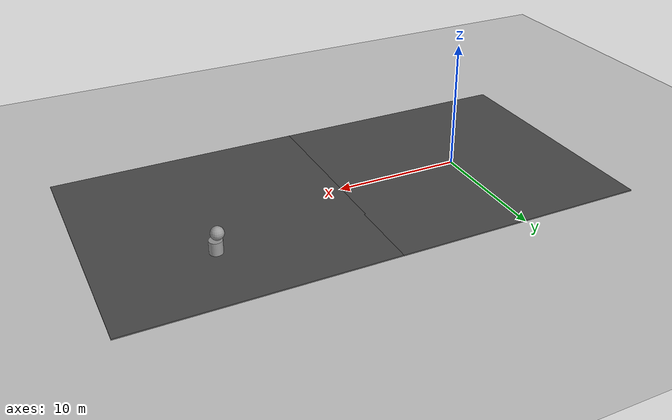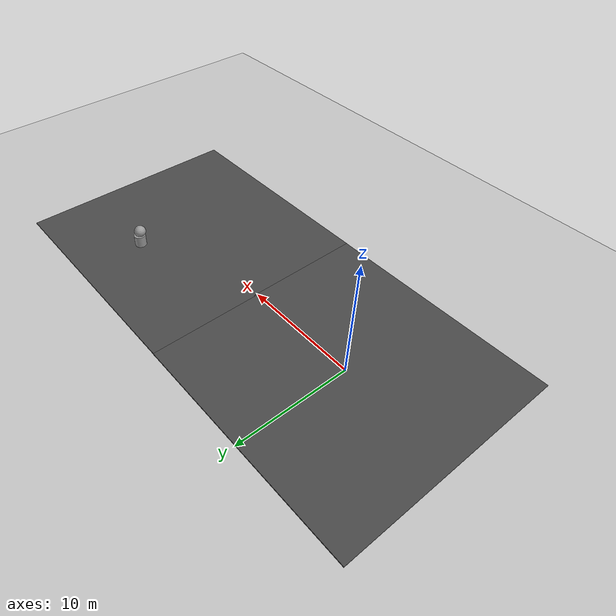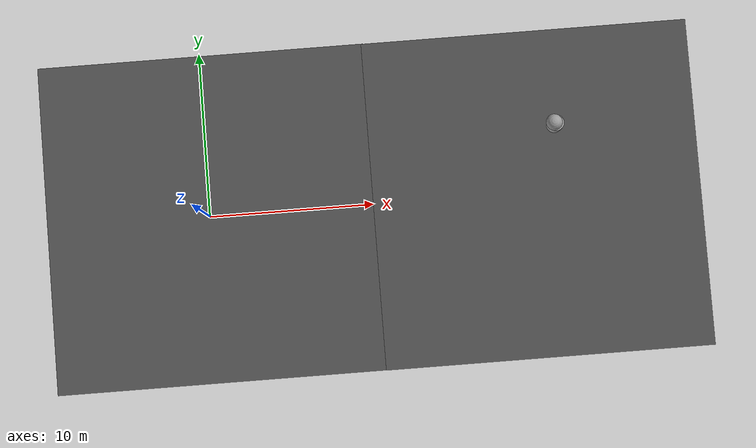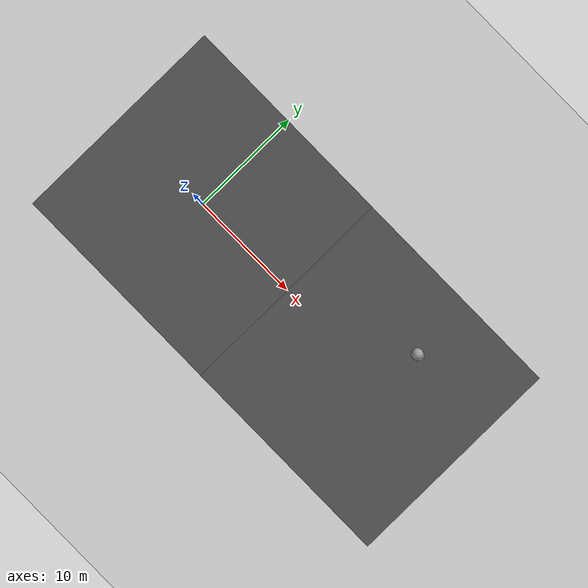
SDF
<sdf version="1.6">
 <world name="default">
  <model name="ground_plane">
   <static>1</static>
   <link name="link">
    <collision name="collision">
     <geometry><plane><normal>0 0 1</normal><size>100 100</size></plane></geometry>
     <surface><friction><ode><mu>100</mu><mu2>50</mu2></ode></friction></surface>
    </collision>
    <visual name="visual">
     <cast_shadows>0</cast_shadows>
     <geometry><plane><normal>0 0 1</normal><size>100 100</size></plane></geometry>
     <material>
      <script><uri>file://media/materials/scripts/gazebo.material</uri><name>Gazebo/Grey</name></script>
     </material>
    </visual>
   </link>
  </model>
  <model name="asphalt_plane">
   <static>1</static>
   <link name="link">
    <collision name="collision"><geometry><box><size>20 20 0.1</size></box></geometry></collision>
    <visual name="visual">
     <cast_shadows>0</cast_shadows>
     <geometry><box><size>20 20 0.1</size></box></geometry>
     <material>
      <script>
       <uri>model://asphalt_plane/materials/scripts</uri>
       <uri>model://asphalt_plane/materials/textures</uri>
       <name>vrc/asphalt</name>
      </script>
     </material>
    </visual>
   </link>
   <pose>0.058806 -0.094526 0 0 -0 0</pose>
  </model>
  <model name="asphalt_plane_0">
   <static>1</static>
   <link name="link">
    <collision name="collision"><geometry><box><size>20 20 0.1</size></box></geometry></collision>
    <visual name="visual">
     <cast_shadows>0</cast_shadows>
     <geometry><box><size>20 20 0.1</size></box></geometry>
     <material>
      <script>
       <uri>model://asphalt_plane/materials/scripts</uri>
       <uri>model://asphalt_plane/materials/textures</uri>
       <name>vrc/asphalt</name>
      </script>
     </material>
    </visual>
   </link>
   <pose>19.9513 -0.10756 0 0 -0 0</pose>
  </model>
  <model name="unit_sphere_0">
   <pose>21.2094 3.98316 1.55004 0.00079 -0.006375 -3e-06</pose>
   <link name="link">
    <inertial>
     <mass>1</mass>
     <inertia><ixx>0.1</ixx><ixy>0</ixy><ixz>0</ixz><iyy>0.1</iyy><iyz>0</iyz><izz>0.1</izz></inertia>
    </inertial>
    <collision name="collision"><geometry><sphere><radius>0.5</radius></sphere></geometry></collision>
    <visual name="visual">
     <geometry><sphere><radius>0.5</radius></sphere></geometry>
     <material>
      <script><name>Gazebo/Grey</name><uri>file://media/materials/scripts/gazebo.material</uri></script>
     </material>
    </visual>
   </link>
  </model>
  <model name="unit_cylinder_2">
   <pose>21.3709 4.00241 0.550059 1.3e-05 -0.00011 -5e-05</pose>
   <link name="link">
    <inertial>
     <mass>1</mass>
     <inertia><ixx>0.145833</ixx><ixy>0</ixy><ixz>0</ixz><iyy>0.145833</iyy><iyz>0</iyz><izz>0.125</izz></inertia>
    </inertial>
    <collision name="collision">
     <geometry><cylinder><radius>0.5</radius><length>1</length></cylinder></geometry>
    </collision>
    <visual name="visual">
     <geometry><cylinder><radius>0.5</radius><length>1</length></cylinder></geometry>
     <material>
      <script><name>Gazebo/Grey</name><uri>file://media/materials/scripts/gazebo.material</uri></script>
     </material>
    </visual>
   </link>
  </model>
 </world>
</sdf>
